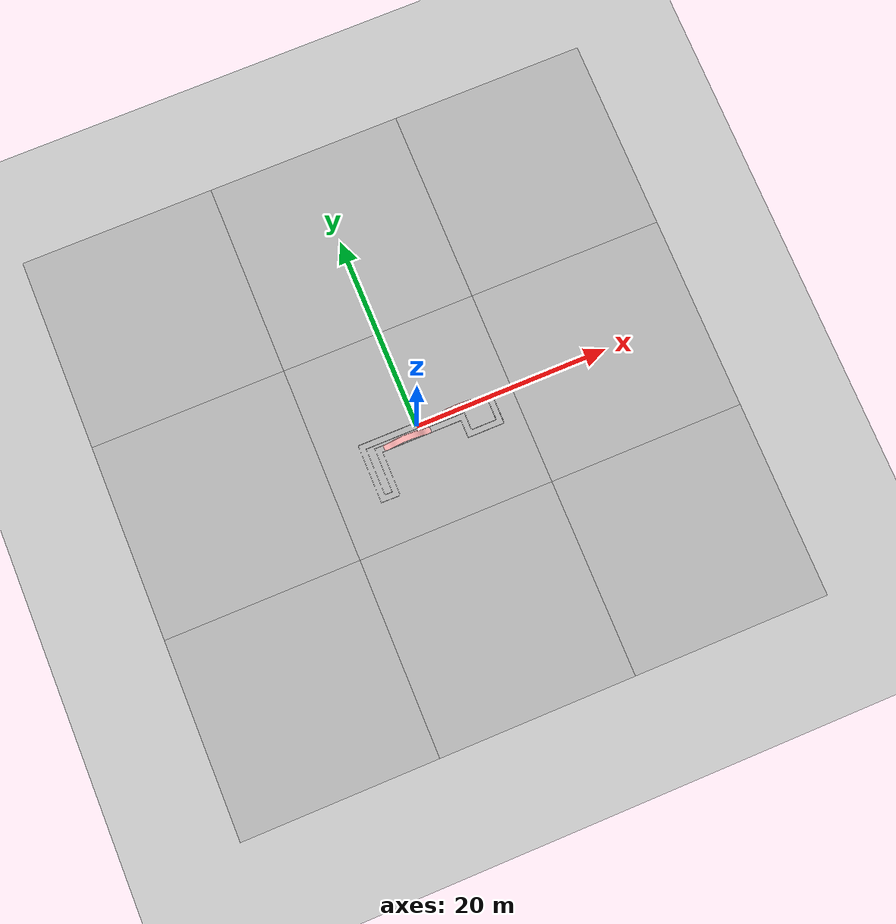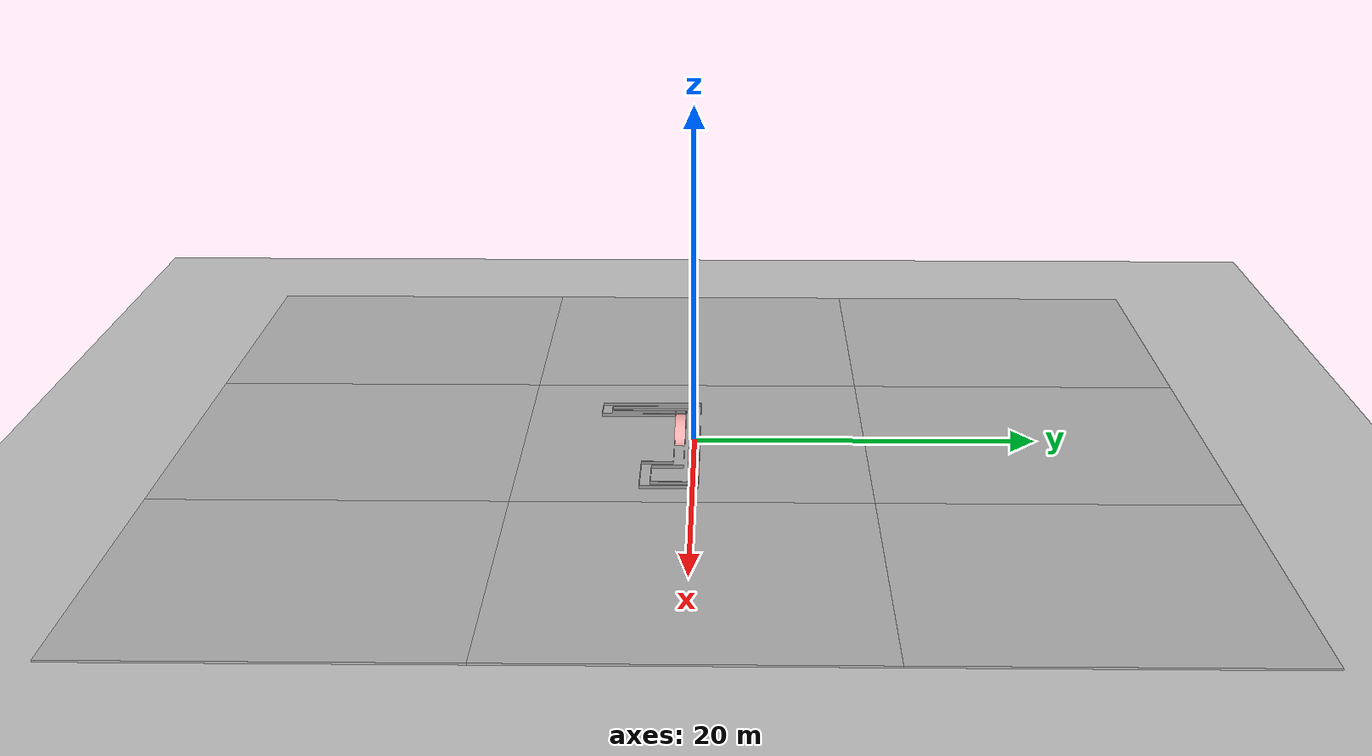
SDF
<sdf version="1.6">
 <world name="default">
  <light name="sun" type="directional">
   <pose>0 0 10 0 -0 0</pose>
   <diffuse>0.8 0.8 0.8 1</diffuse>
   <specular>0.1 0.1 0.1 1</specular>
   <attenuation>
    <range>1000</range>
    <constant>0.9</constant>
    <linear>0.01</linear>
    <quadratic>0.001</quadratic>
   </attenuation>
   <direction>-0.5 0.5 -1</direction>
  </light>
  <model name="ground_plane">
   <static>1</static>
   <link name="link">
    <collision name="collision">
     <geometry><plane><normal>0 0 1</normal><size>100 100</size></plane></geometry>
     <surface><friction><ode><mu>100</mu><mu2>50</mu2></ode></friction></surface>
    </collision>
    <visual name="visual">
     <cast_shadows>0</cast_shadows>
     <geometry><plane><normal>0 0 1</normal><size>100 100</size></plane></geometry>
     <material>
      <script><uri>file://media/materials/scripts/gazebo.material</uri><name>Gazebo/Grey</name></script>
     </material>
    </visual>
   </link>
  </model>
  <gravity>0 0 -9.8</gravity>
  <magnetic_field>6e-06 2.3e-05 -4.2e-05</magnetic_field>
  <atmosphere type="adiabatic"/>
  <physics name="default_physics" default="0" type="ode">
   <max_step_size>0.001</max_step_size>
   <real_time_factor>1</real_time_factor>
   <real_time_update_rate>1000</real_time_update_rate>
  </physics>
  <scene><ambient>0.4 0.4 0.4 1</ambient><background>0.7 0.7 0.7 1</background><shadows>1</shadows></scene>
  <spherical_coordinates>
   <surface_model>EARTH_WGS84</surface_model>
   <latitude_deg>0</latitude_deg>
   <longitude_deg>0</longitude_deg>
   <elevation>0</elevation>
   <heading_deg>0</heading_deg>
  </spherical_coordinates>
  <model name="desert_plane">
   <static>1</static>
   <link name="link">
    <collision name="collision"><geometry><box><size>20 20 0.1</size></box></geometry></collision>
    <visual name="visual">
     <cast_shadows>0</cast_shadows>
     <geometry><box><size>20 20 0.1</size></box></geometry>
     <material>
      <script>
       <uri>model://desert_plane/materials/scripts</uri>
       <uri>model://desert_plane/materials/textures</uri>
       <name>vrc/desert</name>
      </script>
     </material>
    </visual>
   </link>
  </model>
  <model name="desert_plane_clone">
   <static>1</static>
   <link name="link">
    <collision name="collision"><geometry><box><size>20 20 0.1</size></box></geometry></collision>
    <visual name="visual">
     <cast_shadows>0</cast_shadows>
     <geometry><box><size>20 20 0.1</size></box></geometry>
     <material>
      <script>
       <uri>model://desert_plane/materials/scripts</uri>
       <uri>model://desert_plane/materials/textures</uri>
       <name>vrc/desert</name>
      </script>
     </material>
    </visual>
   </link>
   <pose>-20 0 0 0 -0 0</pose>
  </model>
  <model name="desert_plane_clone_clone">
   <static>1</static>
   <link name="link">
    <collision name="collision"><geometry><box><size>20 20 0.1</size></box></geometry></collision>
    <visual name="visual">
     <cast_shadows>0</cast_shadows>
     <geometry><box><size>20 20 0.1</size></box></geometry>
     <material>
      <script>
       <uri>model://desert_plane/materials/scripts</uri>
       <uri>model://desert_plane/materials/textures</uri>
       <name>vrc/desert</name>
      </script>
     </material>
    </visual>
   </link>
   <pose>20 20 0 0 -0 0</pose>
  </model>
  <model name="desert_plane_clone_clone_clone">
   <static>1</static>
   <link name="link">
    <collision name="collision"><geometry><box><size>20 20 0.1</size></box></geometry></collision>
    <visual name="visual">
     <cast_shadows>0</cast_shadows>
     <geometry><box><size>20 20 0.1</size></box></geometry>
     <material>
      <script>
       <uri>model://desert_plane/materials/scripts</uri>
       <uri>model://desert_plane/materials/textures</uri>
       <name>vrc/desert</name>
      </script>
     </material>
    </visual>
   </link>
   <pose>0 20 0 0 -0 0</pose>
  </model>
  <model name="desert_plane_clone_clone_clone_0">
   <static>1</static>
   <link name="link">
    <collision name="collision"><geometry><box><size>20 20 0.1</size></box></geometry></collision>
    <visual name="visual">
     <cast_shadows>0</cast_shadows>
     <geometry><box><size>20 20 0.1</size></box></geometry>
     <material>
      <script>
       <uri>model://desert_plane/materials/scripts</uri>
       <uri>model://desert_plane/materials/textures</uri>
       <name>vrc/desert</name>
      </script>
     </material>
    </visual>
   </link>
   <pose>-20 20 0 0 -0 0</pose>
  </model>
  <model name="desert_plane_clone_clone_clone_1">
   <static>1</static>
   <link name="link">
    <collision name="collision"><geometry><box><size>20 20 0.1</size></box></geometry></collision>
    <visual name="visual">
     <cast_shadows>0</cast_shadows>
     <geometry><box><size>20 20 0.1</size></box></geometry>
     <material>
      <script>
       <uri>model://desert_plane/materials/scripts</uri>
       <uri>model://desert_plane/materials/textures</uri>
       <name>vrc/desert</name>
      </script>
     </material>
    </visual>
   </link>
   <pose>20 0 0 0 -0 0</pose>
  </model>
  <model name="desert_plane_clone_clone_clone_2">
   <static>1</static>
   <link name="link">
    <collision name="collision"><geometry><box><size>20 20 0.1</size></box></geometry></collision>
    <visual name="visual">
     <cast_shadows>0</cast_shadows>
     <geometry><box><size>20 20 0.1</size></box></geometry>
     <material>
      <script>
       <uri>model://desert_plane/materials/scripts</uri>
       <uri>model://desert_plane/materials/textures</uri>
       <name>vrc/desert</name>
      </script>
     </material>
    </visual>
   </link>
   <pose>20 -20 0 0 -0 0</pose>
  </model>
  <model name="desert_plane_clone_clone_clone_3">
   <static>1</static>
   <link name="link">
    <collision name="collision"><geometry><box><size>20 20 0.1</size></box></geometry></collision>
    <visual name="visual">
     <cast_shadows>0</cast_shadows>
     <geometry><box><size>20 20 0.1</size></box></geometry>
     <material>
      <script>
       <uri>model://desert_plane/materials/scripts</uri>
       <uri>model://desert_plane/materials/textures</uri>
       <name>vrc/desert</name>
      </script>
     </material>
    </visual>
   </link>
   <pose>0 -20 0 0 -0 0</pose>
  </model>
  <model name="desert_plane_clone_clone_clone_4">
   <static>1</static>
   <link name="link">
    <collision name="collision"><geometry><box><size>20 20 0.1</size></box></geometry></collision>
    <visual name="visual">
     <cast_shadows>0</cast_shadows>
     <geometry><box><size>20 20 0.1</size></box></geometry>
     <material>
      <script>
       <uri>model://desert_plane/materials/scripts</uri>
       <uri>model://desert_plane/materials/textures</uri>
       <name>vrc/desert</name>
      </script>
     </material>
    </visual>
   </link>
   <pose>-20 -20 0 0 -0 0</pose>
  </model>
  <light name="user_directional_light_0" type="directional">
   <pose>-0.142634 0.042681 1 0 -0 0</pose>
   <diffuse>0.5 0.5 0.5 1</diffuse>
   <specular>0.1 0.1 0.1 1</specular>
   <direction>0.1 0.1 -0.9</direction>
   <attenuation>
    <range>20</range>
    <constant>0.5</constant>
    <linear>0.01</linear>
    <quadratic>0.001</quadratic>
   </attenuation>
  </light>
  <model name="BridgedTrack">
   <model name="FitBridge">
    <link name="link_2">
     <inertial>
      <mass>1</mass>
      <inertia>
       <ixx>0.166667</ixx>
       <ixy>0</ixy>
       <ixz>0</ixz>
       <iyy>0.166667</iyy>
       <iyz>0</iyz>
       <izz>0.166667</izz>
      </inertia>
     </inertial>
     <kinematic>1</kinematic>
     <gravity>0</gravity>
     <visual name="visual">
      <geometry><mesh><uri>model://BridgedTrack/TrackFitBridge.stl</uri><scale>1 1 1</scale></mesh></geometry>
      <material>
       <lighting>1</lighting>
       <script><uri>file://media/materials/scripts/gazebo.material</uri><name>Gazebo/Grey</name></script>
       <ambient>1 0.3 0.3 1</ambient>
       <diffuse>1 0.7 0.7 1</diffuse>
       <specular>0.01 0.01 0.01 1</specular>
       <emissive>0 0 0 1</emissive>
       <shader type="vertex"><normal_map>__default__</normal_map></shader>
      </material>
     </visual>
     <collision name="collision">
      <geometry><mesh><uri>model://BridgedTrack/TrackFitBridge.stl</uri></mesh></geometry>
      <surface>
       <friction>
        <ode><mu>1</mu><mu2>1</mu2><fdir1>0 0 0</fdir1><slip1>0</slip1><slip2>0</slip2></ode>
        <torsional>
         <coefficient>1</coefficient>
         <patch_radius>0</patch_radius>
         <surface_radius>0</surface_radius>
         <use_patch_radius>1</use_patch_radius>
         <ode><slip>0</slip></ode>
        </torsional>
       </friction>
       <bounce><restitution_coefficient>0</restitution_coefficient><threshold>1e+06</threshold></bounce>
       <contact>
        <collide_without_contact>0</collide_without_contact>
        <collide_without_contact_bitmask>1</collide_without_contact_bitmask>
        <collide_bitmask>2</collide_bitmask>
        <ode>
         <soft_cfm>0</soft_cfm>
         <soft_erp>0.2</soft_erp>
         <kp>1e+13</kp>
         <kd>1</kd>
         <max_vel>0.01</max_vel>
         <min_depth>0</min_depth>
        </ode>
        <bullet>
         <split_impulse>1</split_impulse>
         <split_impulse_penetration_threshold>-0.01</split_impulse_penetration_threshold>
         <soft_cfm>0</soft_cfm>
         <soft_erp>0.2</soft_erp>
         <kp>1e+13</kp>
         <kd>1</kd>
        </bullet>
       </contact>
      </surface>
     </collision>
    </link>
    <static>1</static>
    <pose>2.15652 0.455139 -0.011098 0 -0 0</pose>
   </model>
   <model name="FitBridge_clone">
    <link name="link_2">
     <inertial>
      <mass>1</mass>
      <inertia>
       <ixx>0.166667</ixx>
       <ixy>0</ixy>
       <ixz>0</ixz>
       <iyy>0.166667</iyy>
       <iyz>0</iyz>
       <izz>0.166667</izz>
      </inertia>
     </inertial>
     <kinematic>1</kinematic>
     <gravity>0</gravity>
     <visual name="visual">
      <geometry><mesh><uri>model://BridgedTrack/TrackFitBridge.stl</uri><scale>1 1 1</scale></mesh></geometry>
      <material>
       <lighting>1</lighting>
       <script><uri>file://media/materials/scripts/gazebo.material</uri><name>Gazebo/Grey</name></script>
       <ambient>1 0.3 0.3 1</ambient>
       <diffuse>1 0.7 0.7 1</diffuse>
       <specular>0.01 0.01 0.01 1</specular>
       <emissive>0 0 0 1</emissive>
       <shader type="vertex"><normal_map>__default__</normal_map></shader>
      </material>
     </visual>
     <collision name="collision">
      <geometry><mesh><uri>model://BridgedTrack/TrackFitBridge.stl</uri></mesh></geometry>
      <surface>
       <friction>
        <ode><mu>1</mu><mu2>1</mu2><fdir1>0 0 0</fdir1><slip1>0</slip1><slip2>0</slip2></ode>
        <torsional>
         <coefficient>1</coefficient>
         <patch_radius>0</patch_radius>
         <surface_radius>0</surface_radius>
         <use_patch_radius>1</use_patch_radius>
         <ode><slip>0</slip></ode>
        </torsional>
       </friction>
       <bounce><restitution_coefficient>0</restitution_coefficient><threshold>1e+06</threshold></bounce>
       <contact>
        <collide_without_contact>0</collide_without_contact>
        <collide_without_contact_bitmask>1</collide_without_contact_bitmask>
        <collide_bitmask>2</collide_bitmask>
        <ode>
         <soft_cfm>0</soft_cfm>
         <soft_erp>0.2</soft_erp>
         <kp>1e+13</kp>
         <kd>1</kd>
         <max_vel>0.01</max_vel>
         <min_depth>0</min_depth>
        </ode>
        <bullet>
         <split_impulse>1</split_impulse>
         <split_impulse_penetration_threshold>-0.01</split_impulse_penetration_threshold>
         <soft_cfm>0</soft_cfm>
         <soft_erp>0.2</soft_erp>
         <kp>1e+13</kp>
         <kd>1</kd>
        </bullet>
       </contact>
      </surface>
     </collision>
    </link>
    <static>1</static>
    <pose>-3.5408 -0.42999 -0.010074 0 -0 0</pose>
   </model>
   <model name="HighWalledTrack">
    <link name="link_0">
     <inertial>
      <mass>1</mass>
      <inertia>
       <ixx>0.166667</ixx>
       <ixy>0</ixy>
       <ixz>0</ixz>
       <iyy>0.166667</iyy>
       <iyz>0</iyz>
       <izz>0.166667</izz>
      </inertia>
     </inertial>
     <kinematic>1</kinematic>
     <gravity>0</gravity>
     <visual name="visual">
      <geometry><mesh><uri>model://BridgedTrack/trackHighWalls.stl</uri><scale>1 1 1</scale></mesh></geometry>
      <material>
       <lighting>1</lighting>
       <script><uri>file://media/materials/scripts/gazebo.material</uri><name>Gazebo/Grey</name></script>
       <ambient>0.3 0.3 0.3 1</ambient>
       <diffuse>0.7 0.7 0.7 1</diffuse>
       <specular>0.01 0.01 0.01 1</specular>
       <emissive>0 0 0 1</emissive>
       <shader type="vertex"><normal_map>__default__</normal_map></shader>
      </material>
     </visual>
     <collision name="collision">
      <geometry><mesh><uri>model://BridgedTrack/trackHighWalls.stl</uri></mesh></geometry>
      <surface>
       <friction>
        <ode><mu>1</mu><mu2>1</mu2><fdir1>0 0 0</fdir1><slip1>0</slip1><slip2>0</slip2></ode>
        <torsional>
         <coefficient>1</coefficient>
         <patch_radius>0</patch_radius>
         <surface_radius>0</surface_radius>
         <use_patch_radius>1</use_patch_radius>
         <ode><slip>0</slip></ode>
        </torsional>
       </friction>
       <bounce><restitution_coefficient>0</restitution_coefficient><threshold>1e+06</threshold></bounce>
       <contact>
        <collide_without_contact>0</collide_without_contact>
        <collide_without_contact_bitmask>1</collide_without_contact_bitmask>
        <collide_bitmask>1</collide_bitmask>
        <ode>
         <soft_cfm>0</soft_cfm>
         <soft_erp>0.2</soft_erp>
         <kp>1e+13</kp>
         <kd>1</kd>
         <max_vel>0.01</max_vel>
         <min_depth>0</min_depth>
        </ode>
        <bullet>
         <split_impulse>1</split_impulse>
         <split_impulse_penetration_threshold>-0.01</split_impulse_penetration_threshold>
         <soft_cfm>0</soft_cfm>
         <soft_erp>0.2</soft_erp>
         <kp>1e+13</kp>
         <kd>1</kd>
        </bullet>
       </contact>
      </surface>
     </collision>
    </link>
    <static>0</static>
    <allow_auto_disable>0</allow_auto_disable>
    <pose>-4.28888 -0.455241 0.00396 0 -0 0</pose>
   </model>
   <static>0</static>
   <pose>1 -0.3538 0.05 0 -0 0</pose>
  </model>
 </world>
</sdf>
